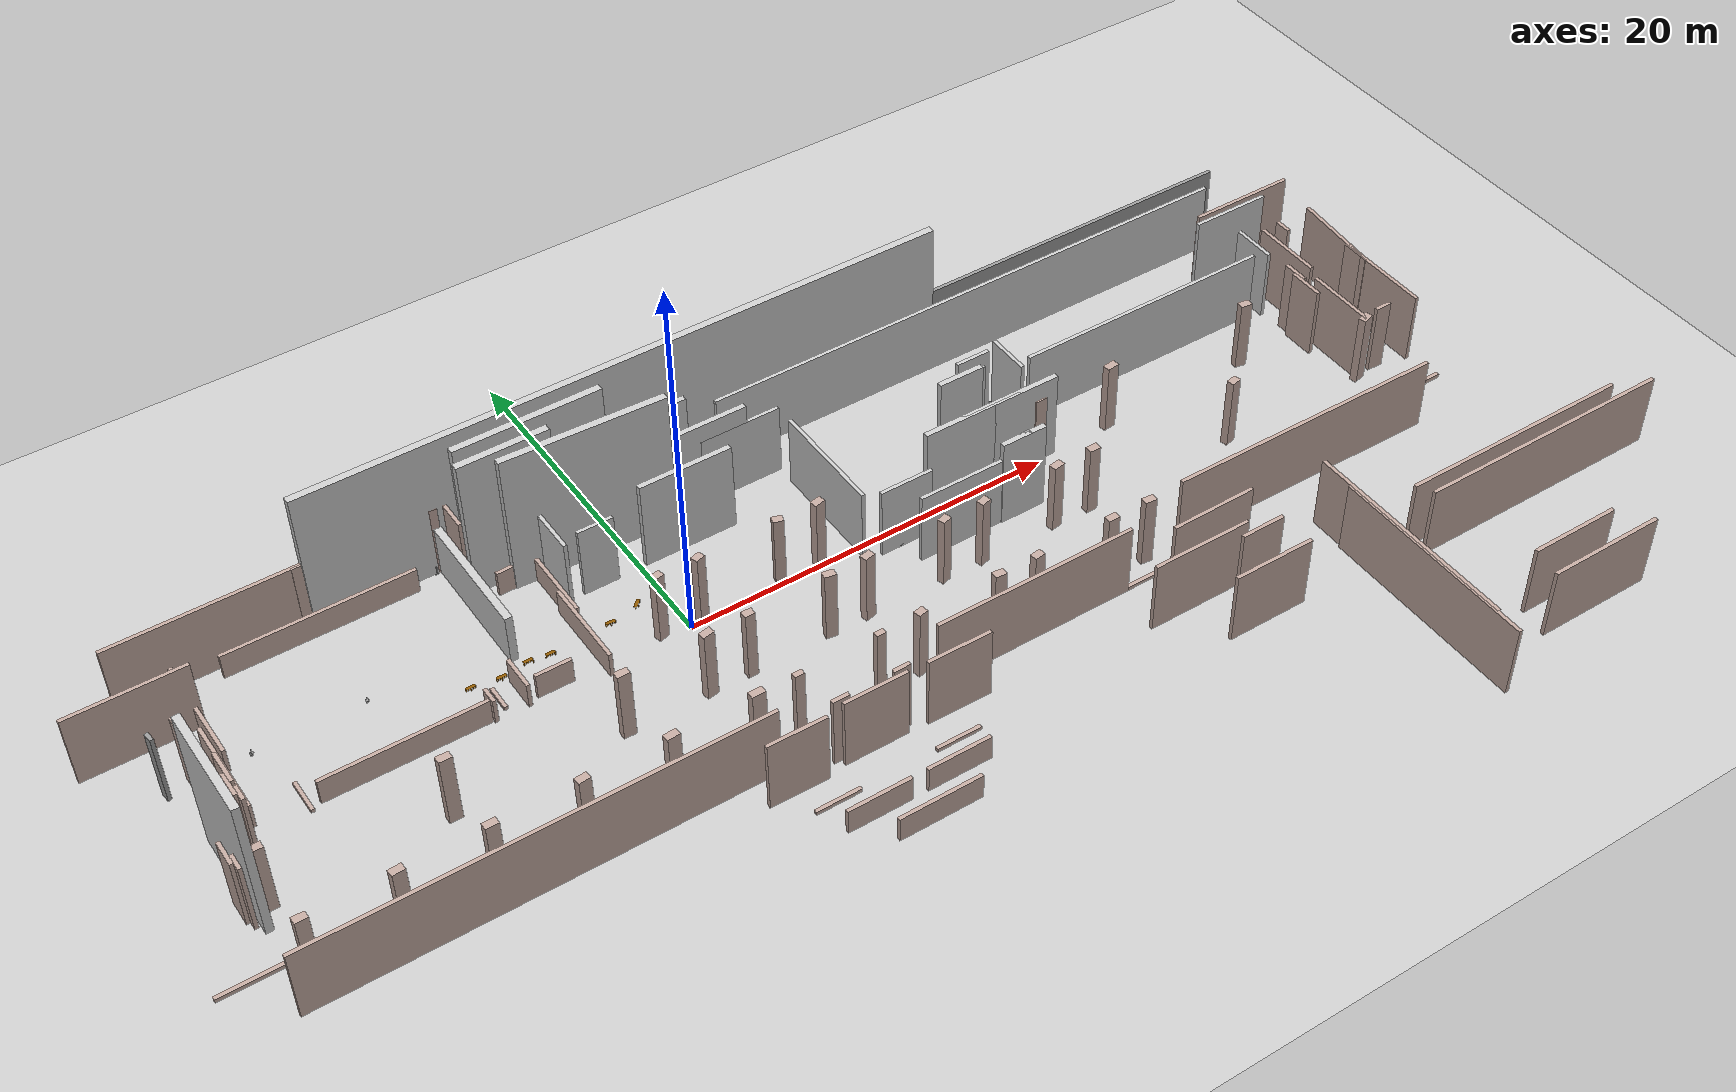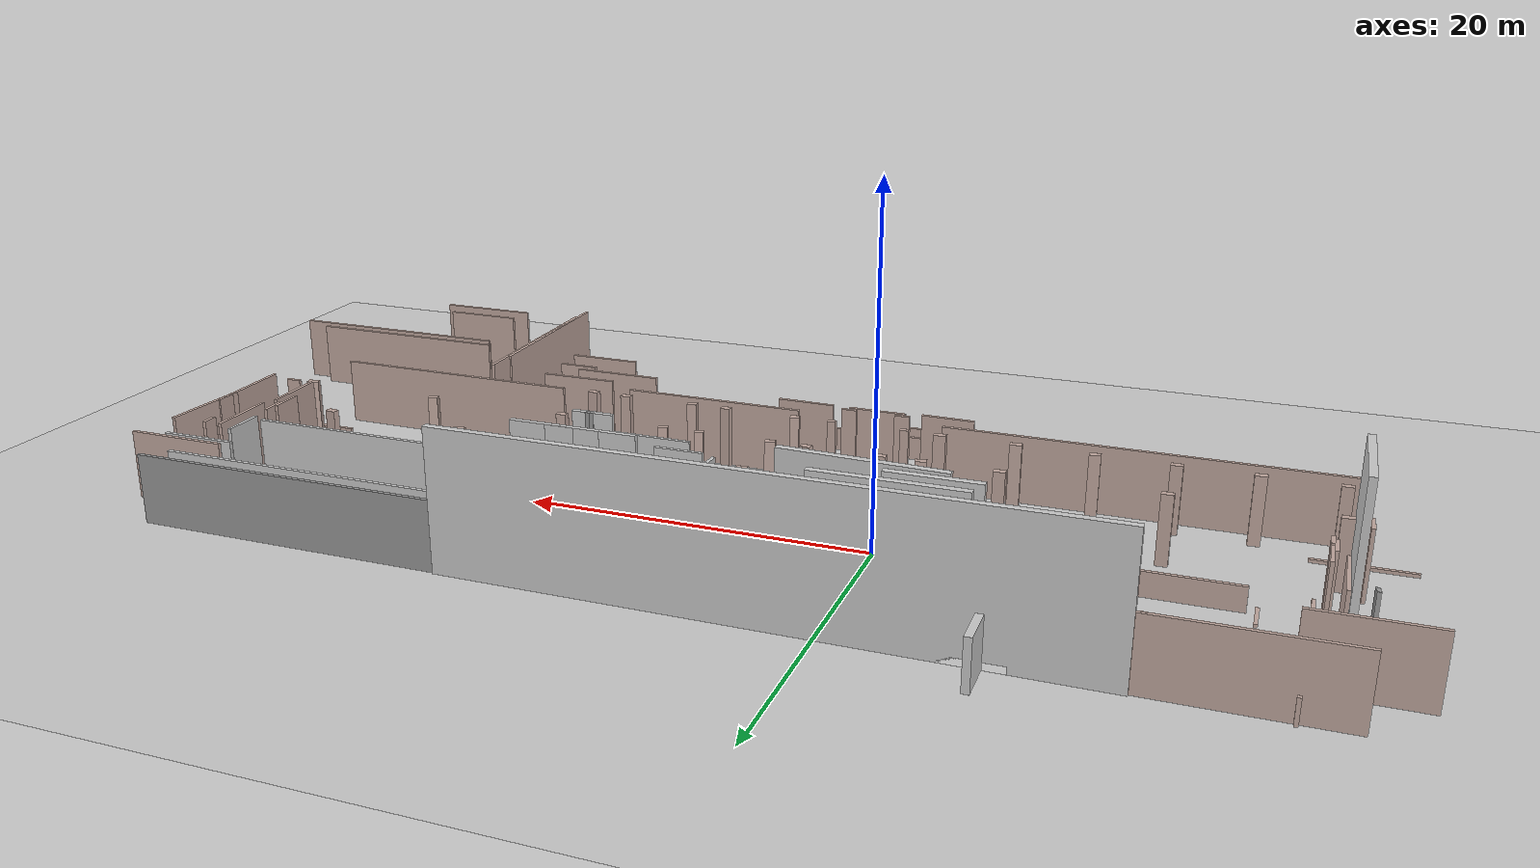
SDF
<?xml version='1.0'?>
<sdf version='1.6'>
  <world name='default'>
    <light name='sun' type='directional'>
      <cast_shadows>1</cast_shadows>
      <pose>0 0 30 0 0 0</pose>
      <diffuse>0.8 0.8 0.8 1</diffuse>
      <specular>0.2 0.2 0.2 1</specular>
      <attenuation>
        <range>3000</range>
        <constant>0.9</constant>
        <linear>0.01</linear>
        <quadratic>0.001</quadratic>
      </attenuation>
      <direction>-0.5 0.1 -0.9</direction>
    </light>

    <model name='ground_plane'>
      <static>true</static>
      <link name='link'>
        <collision name='collision'>
          <geometry>
            <plane>
              <normal>0 0 1</normal>
              <size>1200 1200</size>
            </plane>
          </geometry>
          <surface>
            <contact>
              <collide_bitmask>65535</collide_bitmask>
            </contact>
            <friction>
              <ode>
                <mu>100</mu>
                <mu2>50</mu2>
              </ode>
            </friction>
          </surface>
        </collision>
        <visual name='visual'>
          <cast_shadows>false</cast_shadows>
          <geometry>
            <plane>
              <normal>0 0 1</normal>
              <size>1200 1200</size>
            </plane>
          </geometry>
          <material>
            <ambient>0.8 0.8 0.8 1</ambient>
            <diffuse>0.8 0.8 0.8 1</diffuse>
            <specular>0.8 0.8 0.8 1</specular>
          </material>
        </visual>
      </link>
    </model>

    <gravity>0 0 -9.8</gravity>
    <magnetic_field>6e-06 2.3e-05 -4.2e-05</magnetic_field>
    <atmosphere type='adiabatic'/>

    <physics name='default_physics' default='true' type='ode'>
      <max_step_size>0.001</max_step_size>
      <real_time_factor>1</real_time_factor>
      <real_time_update_rate>1000</real_time_update_rate>
    </physics>

    <scene>
      <ambient>0.4 0.4 0.4 1</ambient>
      <background>0.7 0.7 0.7 1</background>
      <shadows>true</shadows>
    </scene>

    <!-- Include Gedung P building model with corrected offset -->
    <include>
      <uri>model://gedung_p</uri>
      <pose>8.89908 -6.27207 0 0 0 0</pose>
    </include>

    <!-- Cafeteria Tables - All 8 tables with offset positions -->
    <include>
      <uri>model://meja_kantin</uri>
      <name>meja_kantin_001</name>
      <pose>-10.31984 2.2277295 0 0 0 0</pose>
    </include>
    <include>
      <uri>model://meja_kantin</uri>
      <name>meja_kantin_002</name>
      <pose>-8.85204 2.0212465 0 0 0 0</pose>
    </include>
    <include>
      <uri>model://meja_kantin</uri>
      <name>meja_kantin_003</name>
      <pose>-7.3829 2.223144 0 0 0 0</pose>
    </include>
    <include>
      <uri>model://meja_kantin</uri>
      <name>meja_kantin_004</name>
      <pose>-6.323655 2.061859 0 0 0 0</pose>
    </include>
    <include>
      <uri>model://meja_kantin</uri>
      <name>meja_kantin_005</name>
      <pose>-3.06386 2.2242445 0 0 0 0</pose>
    </include>
    <include>
      <uri>model://meja_kantin</uri>
      <name>meja_kantin_006</name>
      <pose>-1.445145 2.593575 0 0 0 0.766666</pose>
    </include>

    <!-- Divo -->
    <include>
      <uri>model://divo</uri>
      <name>divo_001</name>
      <pose>-0.69954 9.886035 0 0 0 0</pose>
    </include>
    <include>
      <uri>model://divo</uri>
      <name>divo_002</name>
      <pose>-8.19954 9.886035 0 0 0 0</pose>
    </include>
    <include>
      <uri>model://divo</uri>
      <name>divo_003</name>
      <pose>-2.19954 8.386035 0 0 0 0</pose>
    </include>

    <!-- Pots -->
    <include>
      <uri>model://pot</uri>
      <name>pot_001</name>
      <pose>-20.22789 4.3492125 0 0 0 0</pose>
    </include>
    <include>
      <uri>model://pot</uri>
      <name>pot_002</name>
      <pose>-14.61213 4.3392945 0 0 0 0</pose>
    </include>
    <include>
      <uri>model://pot</uri>
      <name>pot_003</name>
      <pose>2.3556 -1.13196 0 0 0 0</pose>
    </include>
    <include>
      <uri>model://pot</uri>
      <name>pot_004</name>
      <pose>10.93101 -0.89313 0 0 0 0</pose>
    </include>
    <include>
      <uri>model://pot</uri>
      <name>pot_005</name>
      <pose>20.86281 2.417073 0 0 0 0</pose>
    </include>
    <include>
      <uri>model://pot</uri>
      <name>pot_006</name>
      <pose>20.42811 5.00361 0 0 0 0</pose>
    </include>

  </world>
</sdf>

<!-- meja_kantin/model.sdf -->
<sdf version='1.6'>
  <model name='meja_kantin'>
    <link name='link_9'>
      <inertial>
        <mass>1</mass>
        <inertia>
          <ixx>0.166667</ixx>
          <ixy>0</ixy>
          <ixz>0</ixz>
          <iyy>0.166667</iyy>
          <iyz>0</iyz>
          <izz>0.166667</izz>
        </inertia>
        <pose frame=''>0 0 0 0 -0 0</pose>
      </inertial>
      <pose frame=''>0 0 0 0 -0 0</pose>
      <gravity>1</gravity>
      <self_collide>0</self_collide>
      <kinematic>0</kinematic>
      <enable_wind>0</enable_wind>
      <visual name='visual'>
        <pose frame=''>0 0 0 0 -0 0</pose>
        <geometry>
          <mesh>
            <uri>meshes/meja kantin.dae</uri>
            <scale>0.25 0.25 0.3</scale>
          </mesh>
        </geometry>
        <material>
          <lighting>1</lighting>
          <script>
            <uri>file://media/materials/scripts/gazebo.material</uri>
            <name>Gazebo/Grey</name>
          </script>
          <shader type='vertex'>
            <normal_map>__default__</normal_map>
          </shader>
          <ambient>0.561 0.349 0.008 1</ambient>
          <diffuse>0.561 0.349 0.008 1</diffuse>
          <specular>0.561 0.349 0.008 1</specular>
          <emissive>0.561 0.349 0.008 1</emissive>
        </material>
        <transparency>0</transparency>
        <cast_shadows>1</cast_shadows>
      </visual>
      <collision name='collision'>
        <laser_retro>0</laser_retro>
        <max_contacts>10</max_contacts>
        <pose frame=''>0 0 0 0 -0 0</pose>
        <geometry>
          <mesh>
            <uri>meshes/meja kantin.dae</uri>
            <scale>0.25 0.25 0.3</scale>
          </mesh>
        </geometry>
        <surface>
          <friction>
            <ode>
              <mu>1</mu>
              <mu2>1</mu2>
              <fdir1>0 0 0</fdir1>
              <slip1>0</slip1>
              <slip2>0</slip2>
            </ode>
            <torsional>
              <coefficient>1</coefficient>
              <patch_radius>0</patch_radius>
              <surface_radius>0</surface_radius>
              <use_patch_radius>1</use_patch_radius>
              <ode>
                <slip>0</slip>
              </ode>
            </torsional>
          </friction>
          <bounce>
            <restitution_coefficient>0</restitution_coefficient>
            <threshold>1e+06</threshold>
          </bounce>
          <contact>
            <collide_without_contact>0</collide_without_contact>
            <collide_without_contact_bitmask>1</collide_without_contact_bitmask>
            <collide_bitmask>1</collide_bitmask>
            <ode>
              <soft_cfm>0</soft_cfm>
              <soft_erp>0.2</soft_erp>
              <kp>1e+13</kp>
              <kd>1</kd>
              <max_vel>0.01</max_vel>
              <min_depth>0</min_depth>
            </ode>
            <bullet>
              <split_impulse>1</split_impulse>
              <split_impulse_penetration_threshold>-0.01</split_impulse_penetration_threshold>
              <soft_cfm>0</soft_cfm>
              <soft_erp>0.2</soft_erp>
              <kp>1e+13</kp>
              <kd>1</kd>
            </bullet>
          </contact>
        </surface>
      </collision>
    </link>
    <static>0</static>
    <allow_auto_disable>1</allow_auto_disable>
  </model>
</sdf>

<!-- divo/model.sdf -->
<sdf version='1.6'>
  <model name='divo'>
    <link name='link_0'>
      <inertial>
        <mass>1</mass>
        <inertia>
          <ixx>0.166667</ixx>
          <ixy>0</ixy>
          <ixz>0</ixz>
          <iyy>0.166667</iyy>
          <iyz>0</iyz>
          <izz>0.166667</izz>
        </inertia>
        <pose frame=''>0 0 0 0 -0 0</pose>
      </inertial>
      <pose frame=''>0 0 0 0 -0 0</pose>
      <gravity>1</gravity>
      <self_collide>0</self_collide>
      <kinematic>0</kinematic>
      <enable_wind>0</enable_wind>
      <visual name='visual'>
        <pose frame=''>0 0 0 0 -0 0</pose>
        <geometry>
          <mesh>
            <uri>meshes/DiVO.dae</uri>
            <scale>0.3 0.3 0.3</scale>
          </mesh>
        </geometry>
        <material>
          <lighting>1</lighting>
          <script>
            <uri>file://media/materials/scripts/gazebo.material</uri>
            <name>Gazebo/Grey</name>
          </script>
          <shader type='vertex'>
            <normal_map>__default__</normal_map>
          </shader>
          <ambient>0.729 0.741 0.714 1</ambient>
          <diffuse>0.729 0.741 0.714 1</diffuse>
          <specular>0.729 0.741 0.714 1</specular>
          <emissive>0.729 0.741 0.714 1</emissive>
        </material>
        <transparency>0</transparency>
        <cast_shadows>1</cast_shadows>
      </visual>
      <collision name='collision'>
        <laser_retro>0</laser_retro>
        <max_contacts>10</max_contacts>
        <pose frame=''>0 0 0 0 -0 0</pose>
        <geometry>
          <mesh>
            <uri>meshes/DiVO.dae</uri>
            <scale>0.3 0.3 0.3</scale>
          </mesh>
        </geometry>
        <surface>
          <friction>
            <ode>
              <mu>1</mu>
              <mu2>1</mu2>
              <fdir1>0 0 0</fdir1>
              <slip1>0</slip1>
              <slip2>0</slip2>
            </ode>
            <torsional>
              <coefficient>1</coefficient>
              <patch_radius>0</patch_radius>
              <surface_radius>0</surface_radius>
              <use_patch_radius>1</use_patch_radius>
              <ode>
                <slip>0</slip>
              </ode>
            </torsional>
          </friction>
          <bounce>
            <restitution_coefficient>0</restitution_coefficient>
            <threshold>1e+06</threshold>
          </bounce>
          <contact>
            <collide_without_contact>0</collide_without_contact>
            <collide_without_contact_bitmask>1</collide_without_contact_bitmask>
            <collide_bitmask>1</collide_bitmask>
            <ode>
              <soft_cfm>0</soft_cfm>
              <soft_erp>0.2</soft_erp>
              <kp>1e+13</kp>
              <kd>1</kd>
              <max_vel>0.01</max_vel>
              <min_depth>0</min_depth>
            </ode>
            <bullet>
              <split_impulse>1</split_impulse>
              <split_impulse_penetration_threshold>-0.01</split_impulse_penetration_threshold>
              <soft_cfm>0</soft_cfm>
              <soft_erp>0.2</soft_erp>
              <kp>1e+13</kp>
              <kd>1</kd>
            </bullet>
          </contact>
        </surface>
      </collision>
    </link>
    <static>0</static>
    <allow_auto_disable>1</allow_auto_disable>
  </model>
</sdf>

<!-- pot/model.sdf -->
<sdf version='1.6'>
  <model name='pot'>
    <link name='link_12'>
      <inertial>
        <mass>1</mass>
        <inertia>
          <ixx>0.166667</ixx>
          <ixy>0</ixy>
          <ixz>0</ixz>
          <iyy>0.166667</iyy>
          <iyz>0</iyz>
          <izz>0.166667</izz>
        </inertia>
        <pose frame=''>0 0 0 0 -0 0</pose>
      </inertial>
      <pose frame=''>0 0 0 0 -0 0</pose>
      <gravity>1</gravity>
      <self_collide>0</self_collide>
      <kinematic>0</kinematic>
      <enable_wind>0</enable_wind>
      <visual name='visual'>
        <pose frame=''>0 0 0 0 -0 0</pose>
        <geometry>
          <mesh>
            <uri>meshes/pot.dae</uri>
            <scale>0.2 0.2 0.2</scale>
          </mesh>
        </geometry>
        <material>
          <lighting>1</lighting>
          <script>
            <uri>file://media/materials/scripts/gazebo.material</uri>
            <name>Gazebo/Grey</name>
          </script>
          <shader type='vertex'>
            <normal_map>__default__</normal_map>
          </shader>
          <ambient>0.3 0.3 0.3 1</ambient>
          <diffuse>0.7 0.7 0.7 1</diffuse>
          <specular>0.01 0.01 0.01 1</specular>
          <emissive>0 0 0 1</emissive>
        </material>
        <transparency>0</transparency>
        <cast_shadows>1</cast_shadows>
      </visual>
      <collision name='collision'>
        <laser_retro>0</laser_retro>
        <max_contacts>10</max_contacts>
        <pose frame=''>0 0 0 0 -0 0</pose>
        <geometry>
          <mesh>
            <uri>meshes/pot.dae</uri>
            <scale>0.2 0.2 0.2</scale>
          </mesh>
        </geometry>
        <surface>
          <friction>
            <ode>
              <mu>1</mu>
              <mu2>1</mu2>
              <fdir1>0 0 0</fdir1>
              <slip1>0</slip1>
              <slip2>0</slip2>
            </ode>
            <torsional>
              <coefficient>1</coefficient>
              <patch_radius>0</patch_radius>
              <surface_radius>0</surface_radius>
              <use_patch_radius>1</use_patch_radius>
              <ode>
                <slip>0</slip>
              </ode>
            </torsional>
          </friction>
          <bounce>
            <restitution_coefficient>0</restitution_coefficient>
            <threshold>1e+06</threshold>
          </bounce>
          <contact>
            <collide_without_contact>0</collide_without_contact>
            <collide_without_contact_bitmask>1</collide_without_contact_bitmask>
            <collide_bitmask>1</collide_bitmask>
            <ode>
              <soft_cfm>0</soft_cfm>
              <soft_erp>0.2</soft_erp>
              <kp>1e+13</kp>
              <kd>1</kd>
              <max_vel>0.01</max_vel>
              <min_depth>0</min_depth>
            </ode>
            <bullet>
              <split_impulse>1</split_impulse>
              <split_impulse_penetration_threshold>-0.01</split_impulse_penetration_threshold>
              <soft_cfm>0</soft_cfm>
              <soft_erp>0.2</soft_erp>
              <kp>1e+13</kp>
              <kd>1</kd>
            </bullet>
          </contact>
        </surface>
      </collision>
    </link>
    <static>0</static>
    <allow_auto_disable>1</allow_auto_disable>
  </model>
</sdf>
